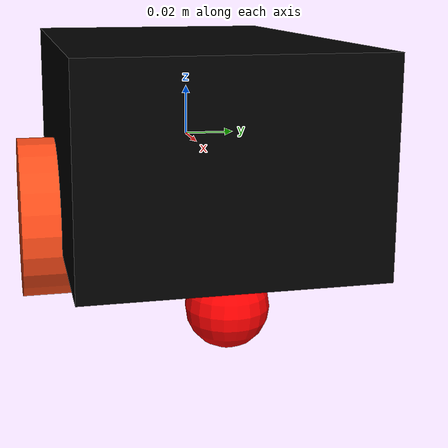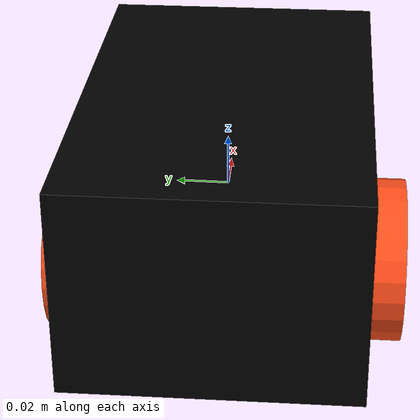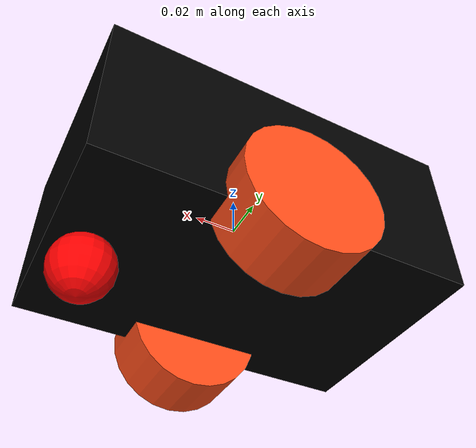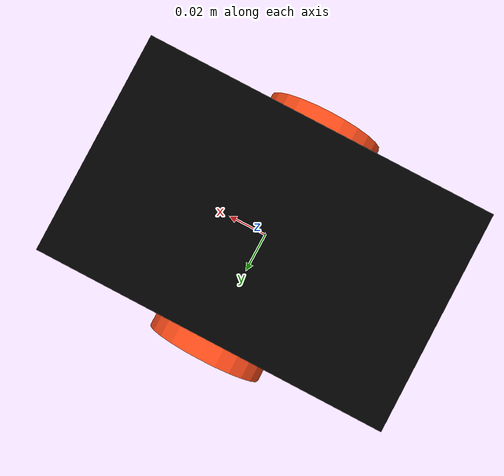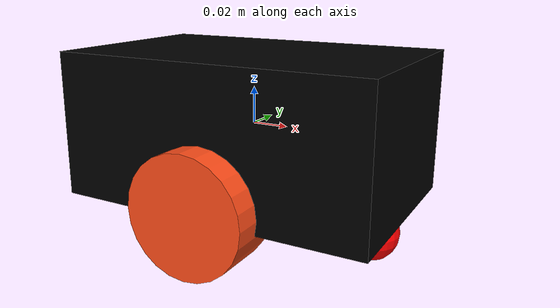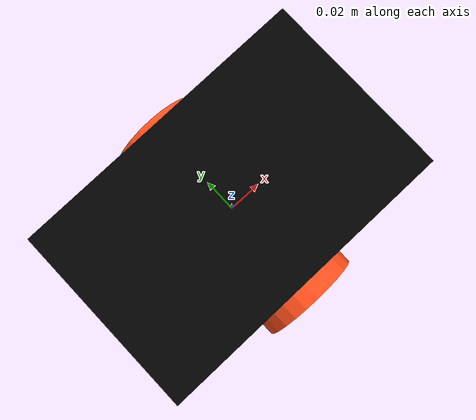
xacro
<?xml version="1.0"?>
<robot xmlns:xacro="http://www.ros.org/wiki/xacro" >

    <xacro:include filename="inertia.xacro"/>

    <material name="white">
        <color rgba="1 1 1 1" />
    </material>

    <material name="orange">
        <color rgba="1 0.3 0.1 1"/>
    </material>

    <material name="blue">
        <color rgba="0.2 0.2 1 1"/>
    </material>

    <material name="black">
        <color rgba="0 0 0 1"/>
    </material>

    <material name="red">
        <color rgba="1 0 0 1"/>
    </material>

    <!-- BASE_FOOTPRINT LINK-->
    <joint name="base_footprint_joint" type="fixed">
        <parent link="base_link"/>
        <child link="base_footprint"/>
        <origin xyz="0 0 0" rpy="0 0 0"/>
    </joint>

    <link name="base_footprint"/>

    <!-- Ana Gövde -->
    <link name="base_link">
        <visual>
            <origin xyz="0.0 0.0 0.0" rpy="0 0 0"/>
            <geometry>
                <box size="0.175 0.110 0.07975"/>
            </geometry>
            <material name="black"/>
        </visual>
        <collision>
            <origin xyz="0.0 0.0 0.0" rpy="0 0 0"/>
            <geometry>
                <box size="0.175 0.110 0.07975"/>
            </geometry>
            <material name="black"/>
        </collision>
        <xacro:inertial_box mass="0.5" x="0.175" y="0.110" z="0.07975">
            <origin xyz="0.0 0.0 0.0" rpy="0 0 0"/>
        </xacro:inertial_box>
    </link>

    <!-- Tekerlekler -->
    <link name="left_wheel">
        <visual>
            <geometry>
                <cylinder radius="0.0325" length="0.03"/>
            </geometry>
            <material name="orange"/>
        </visual>
        <collision>
            <geometry>
                <cylinder radius="0.0325" length="0.03"/>
            </geometry>
            <material name="orange"/>
        </collision>
        <xacro:inertial_cylinder mass="0.1" length="0.03" radius="0.0325">
            <origin xyz="0 0 0" rpy="0 0 0"/>
        </xacro:inertial_cylinder>
    </link>

    <link name="right_wheel">
        <visual>
            <geometry>
                <cylinder radius="0.0325" length="0.03"/>
            </geometry>
            <material name="orange"/>
        </visual>
        <collision>
            <geometry>
                <cylinder radius="0.0325" length="0.03"/>
            </geometry>
            <material name="orange"/>
        </collision>
        <xacro:inertial_cylinder mass="0.1" length="0.03" radius="0.0325">
            <origin xyz="0 0 0" rpy="0 0 0"/>
        </xacro:inertial_cylinder>
    </link>

    <link name="caster_wheel">
        <visual>
            <geometry>
                <sphere radius="0.015" />
            </geometry>
            <material name="red"/>
        </visual>
        <collision>
            <geometry>
                <sphere radius="0.015"/>
            </geometry>
            <material name="red"/>
        </collision>
        <xacro:inertial_sphere mass="0.15" radius="0.015">
            <origin xyz="0 0 0" rpy="0 0 0"/>
        </xacro:inertial_sphere>
    </link>

    <!-- Bağlantılar -->
    <joint name="left_wheel_joint" type="continuous">
        <parent link="base_link"/>
        <child link="left_wheel"/>
        <origin xyz="0.0 0.055 -0.0325" rpy="-${pi/2} 0 0" />
        <axis xyz="0 0 1"/>
    </joint>

    <joint name="right_wheel_joint" type="continuous">
        <parent link="base_link"/>
        <child link="right_wheel"/>
        <origin xyz="0.0 -0.055 -0.0325" rpy="-${pi/2} 0 0" />
        <axis xyz="0 0 1"/>
    </joint>

    <joint name="caster_wheel_joint" type="fixed">
        <parent link="base_link"/>
        <child link="caster_wheel"/>
        <origin xyz="0.07 0.0 -0.05" rpy="0 0 0" />
        <axis xyz="0 0 1"/>
    </joint>

</robot>
